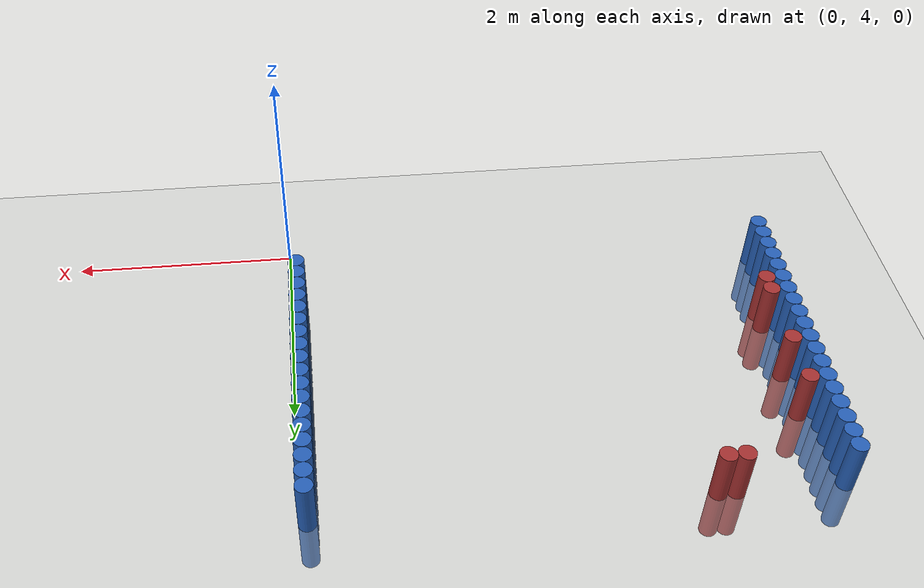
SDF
<sdf version="1.6">
 <world name="default">
  <model name="ground_plane">
   <static>1</static>
   <link name="link">
    <collision name="collision">
     <geometry><plane><normal>0 0 1</normal><size>100 100</size></plane></geometry>
     <surface><friction><ode><mu>100</mu><mu2>50</mu2></ode></friction></surface>
    </collision>
    <visual name="visual">
     <cast_shadows>0</cast_shadows>
     <geometry><plane><normal>0 0 1</normal><size>100 100</size></plane></geometry>
     <material>
      <script><uri>file://media/materials/scripts/gazebo.material</uri><name>Gazebo/Grey</name></script>
     </material>
    </visual>
   </link>
  </model>
  <model name="unit_cylinder_87">
   <static>1</static>
   <pose>-4.425000 4.425000 0.000000 0.000000 0.000000 0.000000</pose>
   <link name="link">
    <inertial>
     <mass>1</mass>
     <inertia><ixx>0.145833</ixx><ixy>0</ixy><ixz>0</ixz><iyy>0.145833</iyy><iyz>0</iyz><izz>0.125</izz></inertia>
    </inertial>
    <collision name="collision">
     <geometry><cylinder><radius>0.075000</radius><length>1</length></cylinder></geometry>
    </collision>
    <visual name="visual">
     <geometry><cylinder><radius>0.075000</radius><length>1</length></cylinder></geometry>
     <material>
      <ambient>0.152000 0.379000 0.720000 1</ambient>
      <diffuse>0.152000 0.379000 0.720000 1</diffuse>
     </material>
     <material>
      <script><name>Gazebo/Grey</name><uri>file://media/materials/scripts/gazebo.material</uri></script>
     </material>
    </visual>
   </link>
  </model>
  <model name="unit_cylinder_88">
   <static>1</static>
   <pose>-0.075000 4.575000 0.000000 0.000000 0.000000 0.000000</pose>
   <link name="link">
    <inertial>
     <mass>1</mass>
     <inertia><ixx>0.145833</ixx><ixy>0</ixy><ixz>0</ixz><iyy>0.145833</iyy><iyz>0</iyz><izz>0.125</izz></inertia>
    </inertial>
    <collision name="collision">
     <geometry><cylinder><radius>0.075000</radius><length>1</length></cylinder></geometry>
    </collision>
    <visual name="visual">
     <geometry><cylinder><radius>0.075000</radius><length>1</length></cylinder></geometry>
     <material>
      <ambient>0.152000 0.379000 0.720000 1</ambient>
      <diffuse>0.152000 0.379000 0.720000 1</diffuse>
     </material>
     <material>
      <script><name>Gazebo/Grey</name><uri>file://media/materials/scripts/gazebo.material</uri></script>
     </material>
    </visual>
   </link>
  </model>
  <model name="unit_cylinder_89">
   <static>1</static>
   <pose>-4.425000 4.575000 0.000000 0.000000 0.000000 0.000000</pose>
   <link name="link">
    <inertial>
     <mass>1</mass>
     <inertia><ixx>0.145833</ixx><ixy>0</ixy><ixz>0</ixz><iyy>0.145833</iyy><iyz>0</iyz><izz>0.125</izz></inertia>
    </inertial>
    <collision name="collision">
     <geometry><cylinder><radius>0.075000</radius><length>1</length></cylinder></geometry>
    </collision>
    <visual name="visual">
     <geometry><cylinder><radius>0.075000</radius><length>1</length></cylinder></geometry>
     <material>
      <ambient>0.152000 0.379000 0.720000 1</ambient>
      <diffuse>0.152000 0.379000 0.720000 1</diffuse>
     </material>
     <material>
      <script><name>Gazebo/Grey</name><uri>file://media/materials/scripts/gazebo.material</uri></script>
     </material>
    </visual>
   </link>
  </model>
  <model name="unit_cylinder_90">
   <static>1</static>
   <pose>-0.075000 4.725000 0.000000 0.000000 0.000000 0.000000</pose>
   <link name="link">
    <inertial>
     <mass>1</mass>
     <inertia><ixx>0.145833</ixx><ixy>0</ixy><ixz>0</ixz><iyy>0.145833</iyy><iyz>0</iyz><izz>0.125</izz></inertia>
    </inertial>
    <collision name="collision">
     <geometry><cylinder><radius>0.075000</radius><length>1</length></cylinder></geometry>
    </collision>
    <visual name="visual">
     <geometry><cylinder><radius>0.075000</radius><length>1</length></cylinder></geometry>
     <material>
      <ambient>0.152000 0.379000 0.720000 1</ambient>
      <diffuse>0.152000 0.379000 0.720000 1</diffuse>
     </material>
     <material>
      <script><name>Gazebo/Grey</name><uri>file://media/materials/scripts/gazebo.material</uri></script>
     </material>
    </visual>
   </link>
  </model>
  <model name="unit_cylinder_91">
   <static>1</static>
   <pose>-4.425000 4.725000 0.000000 0.000000 0.000000 0.000000</pose>
   <link name="link">
    <inertial>
     <mass>1</mass>
     <inertia><ixx>0.145833</ixx><ixy>0</ixy><ixz>0</ixz><iyy>0.145833</iyy><iyz>0</iyz><izz>0.125</izz></inertia>
    </inertial>
    <collision name="collision">
     <geometry><cylinder><radius>0.075000</radius><length>1</length></cylinder></geometry>
    </collision>
    <visual name="visual">
     <geometry><cylinder><radius>0.075000</radius><length>1</length></cylinder></geometry>
     <material>
      <ambient>0.152000 0.379000 0.720000 1</ambient>
      <diffuse>0.152000 0.379000 0.720000 1</diffuse>
     </material>
     <material>
      <script><name>Gazebo/Grey</name><uri>file://media/materials/scripts/gazebo.material</uri></script>
     </material>
    </visual>
   </link>
  </model>
  <model name="unit_cylinder_92">
   <static>1</static>
   <pose>-0.075000 4.875000 0.000000 0.000000 0.000000 0.000000</pose>
   <link name="link">
    <inertial>
     <mass>1</mass>
     <inertia><ixx>0.145833</ixx><ixy>0</ixy><ixz>0</ixz><iyy>0.145833</iyy><iyz>0</iyz><izz>0.125</izz></inertia>
    </inertial>
    <collision name="collision">
     <geometry><cylinder><radius>0.075000</radius><length>1</length></cylinder></geometry>
    </collision>
    <visual name="visual">
     <geometry><cylinder><radius>0.075000</radius><length>1</length></cylinder></geometry>
     <material>
      <ambient>0.152000 0.379000 0.720000 1</ambient>
      <diffuse>0.152000 0.379000 0.720000 1</diffuse>
     </material>
     <material>
      <script><name>Gazebo/Grey</name><uri>file://media/materials/scripts/gazebo.material</uri></script>
     </material>
    </visual>
   </link>
  </model>
  <model name="unit_cylinder_93">
   <static>1</static>
   <pose>-4.425000 4.875000 0.000000 0.000000 0.000000 0.000000</pose>
   <link name="link">
    <inertial>
     <mass>1</mass>
     <inertia><ixx>0.145833</ixx><ixy>0</ixy><ixz>0</ixz><iyy>0.145833</iyy><iyz>0</iyz><izz>0.125</izz></inertia>
    </inertial>
    <collision name="collision">
     <geometry><cylinder><radius>0.075000</radius><length>1</length></cylinder></geometry>
    </collision>
    <visual name="visual">
     <geometry><cylinder><radius>0.075000</radius><length>1</length></cylinder></geometry>
     <material>
      <ambient>0.152000 0.379000 0.720000 1</ambient>
      <diffuse>0.152000 0.379000 0.720000 1</diffuse>
     </material>
     <material>
      <script><name>Gazebo/Grey</name><uri>file://media/materials/scripts/gazebo.material</uri></script>
     </material>
    </visual>
   </link>
  </model>
  <model name="unit_cylinder_94">
   <static>1</static>
   <pose>-0.075000 5.025000 0.000000 0.000000 0.000000 0.000000</pose>
   <link name="link">
    <inertial>
     <mass>1</mass>
     <inertia><ixx>0.145833</ixx><ixy>0</ixy><ixz>0</ixz><iyy>0.145833</iyy><iyz>0</iyz><izz>0.125</izz></inertia>
    </inertial>
    <collision name="collision">
     <geometry><cylinder><radius>0.075000</radius><length>1</length></cylinder></geometry>
    </collision>
    <visual name="visual">
     <geometry><cylinder><radius>0.075000</radius><length>1</length></cylinder></geometry>
     <material>
      <ambient>0.152000 0.379000 0.720000 1</ambient>
      <diffuse>0.152000 0.379000 0.720000 1</diffuse>
     </material>
     <material>
      <script><name>Gazebo/Grey</name><uri>file://media/materials/scripts/gazebo.material</uri></script>
     </material>
    </visual>
   </link>
  </model>
  <model name="unit_cylinder_95">
   <static>1</static>
   <pose>-4.425000 5.025000 0.000000 0.000000 0.000000 0.000000</pose>
   <link name="link">
    <inertial>
     <mass>1</mass>
     <inertia><ixx>0.145833</ixx><ixy>0</ixy><ixz>0</ixz><iyy>0.145833</iyy><iyz>0</iyz><izz>0.125</izz></inertia>
    </inertial>
    <collision name="collision">
     <geometry><cylinder><radius>0.075000</radius><length>1</length></cylinder></geometry>
    </collision>
    <visual name="visual">
     <geometry><cylinder><radius>0.075000</radius><length>1</length></cylinder></geometry>
     <material>
      <ambient>0.152000 0.379000 0.720000 1</ambient>
      <diffuse>0.152000 0.379000 0.720000 1</diffuse>
     </material>
     <material>
      <script><name>Gazebo/Grey</name><uri>file://media/materials/scripts/gazebo.material</uri></script>
     </material>
    </visual>
   </link>
  </model>
  <model name="unit_cylinder_96">
   <static>1</static>
   <pose>-4.425000 5.175000 0.000000 0.000000 0.000000 0.000000</pose>
   <link name="link">
    <inertial>
     <mass>1</mass>
     <inertia><ixx>0.145833</ixx><ixy>0</ixy><ixz>0</ixz><iyy>0.145833</iyy><iyz>0</iyz><izz>0.125</izz></inertia>
    </inertial>
    <collision name="collision">
     <geometry><cylinder><radius>0.075000</radius><length>1</length></cylinder></geometry>
    </collision>
    <visual name="visual">
     <geometry><cylinder><radius>0.075000</radius><length>1</length></cylinder></geometry>
     <material>
      <ambient>0.152000 0.379000 0.720000 1</ambient>
      <diffuse>0.152000 0.379000 0.720000 1</diffuse>
     </material>
     <material>
      <script><name>Gazebo/Grey</name><uri>file://media/materials/scripts/gazebo.material</uri></script>
     </material>
    </visual>
   </link>
  </model>
  <model name="unit_cylinder_97">
   <static>1</static>
   <pose>-4.425000 5.325000 0.000000 0.000000 0.000000 0.000000</pose>
   <link name="link">
    <inertial>
     <mass>1</mass>
     <inertia><ixx>0.145833</ixx><ixy>0</ixy><ixz>0</ixz><iyy>0.145833</iyy><iyz>0</iyz><izz>0.125</izz></inertia>
    </inertial>
    <collision name="collision">
     <geometry><cylinder><radius>0.075000</radius><length>1</length></cylinder></geometry>
    </collision>
    <visual name="visual">
     <geometry><cylinder><radius>0.075000</radius><length>1</length></cylinder></geometry>
     <material>
      <ambient>0.152000 0.379000 0.720000 1</ambient>
      <diffuse>0.152000 0.379000 0.720000 1</diffuse>
     </material>
     <material>
      <script><name>Gazebo/Grey</name><uri>file://media/materials/scripts/gazebo.material</uri></script>
     </material>
    </visual>
   </link>
  </model>
  <model name="unit_cylinder_98">
   <static>1</static>
   <pose>-4.425000 5.475000 0.000000 0.000000 0.000000 0.000000</pose>
   <link name="link">
    <inertial>
     <mass>1</mass>
     <inertia><ixx>0.145833</ixx><ixy>0</ixy><ixz>0</ixz><iyy>0.145833</iyy><iyz>0</iyz><izz>0.125</izz></inertia>
    </inertial>
    <collision name="collision">
     <geometry><cylinder><radius>0.075000</radius><length>1</length></cylinder></geometry>
    </collision>
    <visual name="visual">
     <geometry><cylinder><radius>0.075000</radius><length>1</length></cylinder></geometry>
     <material>
      <ambient>0.152000 0.379000 0.720000 1</ambient>
      <diffuse>0.152000 0.379000 0.720000 1</diffuse>
     </material>
     <material>
      <script><name>Gazebo/Grey</name><uri>file://media/materials/scripts/gazebo.material</uri></script>
     </material>
    </visual>
   </link>
  </model>
  <model name="unit_cylinder_99">
   <static>1</static>
   <pose>-4.425000 5.625000 0.000000 0.000000 0.000000 0.000000</pose>
   <link name="link">
    <inertial>
     <mass>1</mass>
     <inertia><ixx>0.145833</ixx><ixy>0</ixy><ixz>0</ixz><iyy>0.145833</iyy><iyz>0</iyz><izz>0.125</izz></inertia>
    </inertial>
    <collision name="collision">
     <geometry><cylinder><radius>0.075000</radius><length>1</length></cylinder></geometry>
    </collision>
    <visual name="visual">
     <geometry><cylinder><radius>0.075000</radius><length>1</length></cylinder></geometry>
     <material>
      <ambient>0.152000 0.379000 0.720000 1</ambient>
      <diffuse>0.152000 0.379000 0.720000 1</diffuse>
     </material>
     <material>
      <script><name>Gazebo/Grey</name><uri>file://media/materials/scripts/gazebo.material</uri></script>
     </material>
    </visual>
   </link>
  </model>
  <model name="unit_cylinder_100">
   <static>1</static>
   <pose>-4.425000 5.775000 0.000000 0.000000 0.000000 0.000000</pose>
   <link name="link">
    <inertial>
     <mass>1</mass>
     <inertia><ixx>0.145833</ixx><ixy>0</ixy><ixz>0</ixz><iyy>0.145833</iyy><iyz>0</iyz><izz>0.125</izz></inertia>
    </inertial>
    <collision name="collision">
     <geometry><cylinder><radius>0.075000</radius><length>1</length></cylinder></geometry>
    </collision>
    <visual name="visual">
     <geometry><cylinder><radius>0.075000</radius><length>1</length></cylinder></geometry>
     <material>
      <ambient>0.152000 0.379000 0.720000 1</ambient>
      <diffuse>0.152000 0.379000 0.720000 1</diffuse>
     </material>
     <material>
      <script><name>Gazebo/Grey</name><uri>file://media/materials/scripts/gazebo.material</uri></script>
     </material>
    </visual>
   </link>
  </model>
  <model name="unit_cylinder_101">
   <static>1</static>
   <pose>-4.425000 5.925000 0.000000 0.000000 0.000000 0.000000</pose>
   <link name="link">
    <inertial>
     <mass>1</mass>
     <inertia><ixx>0.145833</ixx><ixy>0</ixy><ixz>0</ixz><iyy>0.145833</iyy><iyz>0</iyz><izz>0.125</izz></inertia>
    </inertial>
    <collision name="collision">
     <geometry><cylinder><radius>0.075000</radius><length>1</length></cylinder></geometry>
    </collision>
    <visual name="visual">
     <geometry><cylinder><radius>0.075000</radius><length>1</length></cylinder></geometry>
     <material>
      <ambient>0.152000 0.379000 0.720000 1</ambient>
      <diffuse>0.152000 0.379000 0.720000 1</diffuse>
     </material>
     <material>
      <script><name>Gazebo/Grey</name><uri>file://media/materials/scripts/gazebo.material</uri></script>
     </material>
    </visual>
   </link>
  </model>
  <model name="unit_cylinder_102">
   <static>1</static>
   <pose>-4.425000 6.075000 0.000000 0.000000 0.000000 0.000000</pose>
   <link name="link">
    <inertial>
     <mass>1</mass>
     <inertia><ixx>0.145833</ixx><ixy>0</ixy><ixz>0</ixz><iyy>0.145833</iyy><iyz>0</iyz><izz>0.125</izz></inertia>
    </inertial>
    <collision name="collision">
     <geometry><cylinder><radius>0.075000</radius><length>1</length></cylinder></geometry>
    </collision>
    <visual name="visual">
     <geometry><cylinder><radius>0.075000</radius><length>1</length></cylinder></geometry>
     <material>
      <ambient>0.152000 0.379000 0.720000 1</ambient>
      <diffuse>0.152000 0.379000 0.720000 1</diffuse>
     </material>
     <material>
      <script><name>Gazebo/Grey</name><uri>file://media/materials/scripts/gazebo.material</uri></script>
     </material>
    </visual>
   </link>
  </model>
  <model name="unit_cylinder_103">
   <static>1</static>
   <pose>-4.425000 6.225000 0.000000 0.000000 0.000000 0.000000</pose>
   <link name="link">
    <inertial>
     <mass>1</mass>
     <inertia><ixx>0.145833</ixx><ixy>0</ixy><ixz>0</ixz><iyy>0.145833</iyy><iyz>0</iyz><izz>0.125</izz></inertia>
    </inertial>
    <collision name="collision">
     <geometry><cylinder><radius>0.075000</radius><length>1</length></cylinder></geometry>
    </collision>
    <visual name="visual">
     <geometry><cylinder><radius>0.075000</radius><length>1</length></cylinder></geometry>
     <material>
      <ambient>0.152000 0.379000 0.720000 1</ambient>
      <diffuse>0.152000 0.379000 0.720000 1</diffuse>
     </material>
     <material>
      <script><name>Gazebo/Grey</name><uri>file://media/materials/scripts/gazebo.material</uri></script>
     </material>
    </visual>
   </link>
  </model>
  <model name="unit_cylinder_104">
   <static>1</static>
   <pose>-4.425000 6.375000 0.000000 0.000000 0.000000 0.000000</pose>
   <link name="link">
    <inertial>
     <mass>1</mass>
     <inertia><ixx>0.145833</ixx><ixy>0</ixy><ixz>0</ixz><iyy>0.145833</iyy><iyz>0</iyz><izz>0.125</izz></inertia>
    </inertial>
    <collision name="collision">
     <geometry><cylinder><radius>0.075000</radius><length>1</length></cylinder></geometry>
    </collision>
    <visual name="visual">
     <geometry><cylinder><radius>0.075000</radius><length>1</length></cylinder></geometry>
     <material>
      <ambient>0.152000 0.379000 0.720000 1</ambient>
      <diffuse>0.152000 0.379000 0.720000 1</diffuse>
     </material>
     <material>
      <script><name>Gazebo/Grey</name><uri>file://media/materials/scripts/gazebo.material</uri></script>
     </material>
    </visual>
   </link>
  </model>
  <model name="unit_cylinder_105">
   <static>1</static>
   <pose>-4.425000 6.525000 0.000000 0.000000 0.000000 0.000000</pose>
   <link name="link">
    <inertial>
     <mass>1</mass>
     <inertia><ixx>0.145833</ixx><ixy>0</ixy><ixz>0</ixz><iyy>0.145833</iyy><iyz>0</iyz><izz>0.125</izz></inertia>
    </inertial>
    <collision name="collision">
     <geometry><cylinder><radius>0.075000</radius><length>1</length></cylinder></geometry>
    </collision>
    <visual name="visual">
     <geometry><cylinder><radius>0.075000</radius><length>1</length></cylinder></geometry>
     <material>
      <ambient>0.152000 0.379000 0.720000 1</ambient>
      <diffuse>0.152000 0.379000 0.720000 1</diffuse>
     </material>
     <material>
      <script><name>Gazebo/Grey</name><uri>file://media/materials/scripts/gazebo.material</uri></script>
     </material>
    </visual>
   </link>
  </model>
  <model name="unit_cylinder_106">
   <static>1</static>
   <pose>-4.425000 6.675000 0.000000 0.000000 0.000000 0.000000</pose>
   <link name="link">
    <inertial>
     <mass>1</mass>
     <inertia><ixx>0.145833</ixx><ixy>0</ixy><ixz>0</ixz><iyy>0.145833</iyy><iyz>0</iyz><izz>0.125</izz></inertia>
    </inertial>
    <collision name="collision">
     <geometry><cylinder><radius>0.075000</radius><length>1</length></cylinder></geometry>
    </collision>
    <visual name="visual">
     <geometry><cylinder><radius>0.075000</radius><length>1</length></cylinder></geometry>
     <material>
      <ambient>0.152000 0.379000 0.720000 1</ambient>
      <diffuse>0.152000 0.379000 0.720000 1</diffuse>
     </material>
     <material>
      <script><name>Gazebo/Grey</name><uri>file://media/materials/scripts/gazebo.material</uri></script>
     </material>
    </visual>
   </link>
  </model>
  <model name="unit_cylinder_107">
   <static>1</static>
   <pose>-4.425000 6.825000 0.000000 0.000000 0.000000 0.000000</pose>
   <link name="link">
    <inertial>
     <mass>1</mass>
     <inertia><ixx>0.145833</ixx><ixy>0</ixy><ixz>0</ixz><iyy>0.145833</iyy><iyz>0</iyz><izz>0.125</izz></inertia>
    </inertial>
    <collision name="collision">
     <geometry><cylinder><radius>0.075000</radius><length>1</length></cylinder></geometry>
    </collision>
    <visual name="visual">
     <geometry><cylinder><radius>0.075000</radius><length>1</length></cylinder></geometry>
     <material>
      <ambient>0.152000 0.379000 0.720000 1</ambient>
      <diffuse>0.152000 0.379000 0.720000 1</diffuse>
     </material>
     <material>
      <script><name>Gazebo/Grey</name><uri>file://media/materials/scripts/gazebo.material</uri></script>
     </material>
    </visual>
   </link>
  </model>
  <model name="unit_cylinder_108">
   <static>1</static>
   <pose>-4.425000 6.975000 0.000000 0.000000 0.000000 0.000000</pose>
   <link name="link">
    <inertial>
     <mass>1</mass>
     <inertia><ixx>0.145833</ixx><ixy>0</ixy><ixz>0</ixz><iyy>0.145833</iyy><iyz>0</iyz><izz>0.125</izz></inertia>
    </inertial>
    <collision name="collision">
     <geometry><cylinder><radius>0.075000</radius><length>1</length></cylinder></geometry>
    </collision>
    <visual name="visual">
     <geometry><cylinder><radius>0.075000</radius><length>1</length></cylinder></geometry>
     <material>
      <ambient>0.152000 0.379000 0.720000 1</ambient>
      <diffuse>0.152000 0.379000 0.720000 1</diffuse>
     </material>
     <material>
      <script><name>Gazebo/Grey</name><uri>file://media/materials/scripts/gazebo.material</uri></script>
     </material>
    </visual>
   </link>
  </model>
  <model name="unit_cylinder_109">
   <static>1</static>
   <pose>-4.425000 7.125000 0.000000 0.000000 0.000000 0.000000</pose>
   <link name="link">
    <inertial>
     <mass>1</mass>
     <inertia><ixx>0.145833</ixx><ixy>0</ixy><ixz>0</ixz><iyy>0.145833</iyy><iyz>0</iyz><izz>0.125</izz></inertia>
    </inertial>
    <collision name="collision">
     <geometry><cylinder><radius>0.075000</radius><length>1</length></cylinder></geometry>
    </collision>
    <visual name="visual">
     <geometry><cylinder><radius>0.075000</radius><length>1</length></cylinder></geometry>
     <material>
      <ambient>0.152000 0.379000 0.720000 1</ambient>
      <diffuse>0.152000 0.379000 0.720000 1</diffuse>
     </material>
     <material>
      <script><name>Gazebo/Grey</name><uri>file://media/materials/scripts/gazebo.material</uri></script>
     </material>
    </visual>
   </link>
  </model>
  <model name="unit_cylinder_126">
   <static>1</static>
   <pose>-4.275000 5.175000 0.000000 0.000000 0.000000 0.000000</pose>
   <link name="link">
    <inertial>
     <mass>1</mass>
     <inertia><ixx>0.145833</ixx><ixy>0</ixy><ixz>0</ixz><iyy>0.145833</iyy><iyz>0</iyz><izz>0.125</izz></inertia>
    </inertial>
    <collision name="collision">
     <geometry><cylinder><radius>0.075000</radius><length>1</length></cylinder></geometry>
    </collision>
    <visual name="visual">
     <geometry><cylinder><radius>0.075000</radius><length>1</length></cylinder></geometry>
     <material>
      <ambient>0.648000 0.192000 0.192000 1</ambient>
      <diffuse>0.648000 0.192000 0.192000 1</diffuse>
     </material>
     <material>
      <script><name>Gazebo/Grey</name><uri>file://media/materials/scripts/gazebo.material</uri></script>
     </material>
    </visual>
   </link>
  </model>
  <model name="unit_cylinder_127">
   <static>1</static>
   <pose>-4.275000 5.325000 0.000000 0.000000 0.000000 0.000000</pose>
   <link name="link">
    <inertial>
     <mass>1</mass>
     <inertia><ixx>0.145833</ixx><ixy>0</ixy><ixz>0</ixz><iyy>0.145833</iyy><iyz>0</iyz><izz>0.125</izz></inertia>
    </inertial>
    <collision name="collision">
     <geometry><cylinder><radius>0.075000</radius><length>1</length></cylinder></geometry>
    </collision>
    <visual name="visual">
     <geometry><cylinder><radius>0.075000</radius><length>1</length></cylinder></geometry>
     <material>
      <ambient>0.648000 0.192000 0.192000 1</ambient>
      <diffuse>0.648000 0.192000 0.192000 1</diffuse>
     </material>
     <material>
      <script><name>Gazebo/Grey</name><uri>file://media/materials/scripts/gazebo.material</uri></script>
     </material>
    </visual>
   </link>
  </model>
  <model name="unit_cylinder_128">
   <static>1</static>
   <pose>-4.275000 5.925000 0.000000 0.000000 0.000000 0.000000</pose>
   <link name="link">
    <inertial>
     <mass>1</mass>
     <inertia><ixx>0.145833</ixx><ixy>0</ixy><ixz>0</ixz><iyy>0.145833</iyy><iyz>0</iyz><izz>0.125</izz></inertia>
    </inertial>
    <collision name="collision">
     <geometry><cylinder><radius>0.075000</radius><length>1</length></cylinder></geometry>
    </collision>
    <visual name="visual">
     <geometry><cylinder><radius>0.075000</radius><length>1</length></cylinder></geometry>
     <material>
      <ambient>0.648000 0.192000 0.192000 1</ambient>
      <diffuse>0.648000 0.192000 0.192000 1</diffuse>
     </material>
     <material>
      <script><name>Gazebo/Grey</name><uri>file://media/materials/scripts/gazebo.material</uri></script>
     </material>
    </visual>
   </link>
  </model>
  <model name="unit_cylinder_129">
   <static>1</static>
   <pose>-4.275000 6.375000 0.000000 0.000000 0.000000 0.000000</pose>
   <link name="link">
    <inertial>
     <mass>1</mass>
     <inertia><ixx>0.145833</ixx><ixy>0</ixy><ixz>0</ixz><iyy>0.145833</iyy><iyz>0</iyz><izz>0.125</izz></inertia>
    </inertial>
    <collision name="collision">
     <geometry><cylinder><radius>0.075000</radius><length>1</length></cylinder></geometry>
    </collision>
    <visual name="visual">
     <geometry><cylinder><radius>0.075000</radius><length>1</length></cylinder></geometry>
     <material>
      <ambient>0.648000 0.192000 0.192000 1</ambient>
      <diffuse>0.648000 0.192000 0.192000 1</diffuse>
     </material>
     <material>
      <script><name>Gazebo/Grey</name><uri>file://media/materials/scripts/gazebo.material</uri></script>
     </material>
    </visual>
   </link>
  </model>
  <model name="unit_cylinder_132">
   <static>1</static>
   <pose>-3.525000 7.125000 0.000000 0.000000 0.000000 0.000000</pose>
   <link name="link">
    <inertial>
     <mass>1</mass>
     <inertia><ixx>0.145833</ixx><ixy>0</ixy><ixz>0</ixz><iyy>0.145833</iyy><iyz>0</iyz><izz>0.125</izz></inertia>
    </inertial>
    <collision name="collision">
     <geometry><cylinder><radius>0.075000</radius><length>1</length></cylinder></geometry>
    </collision>
    <visual name="visual">
     <geometry><cylinder><radius>0.075000</radius><length>1</length></cylinder></geometry>
     <material>
      <ambient>0.648000 0.192000 0.192000 1</ambient>
      <diffuse>0.648000 0.192000 0.192000 1</diffuse>
     </material>
     <material>
      <script><name>Gazebo/Grey</name><uri>file://media/materials/scripts/gazebo.material</uri></script>
     </material>
    </visual>
   </link>
  </model>
  <model name="unit_cylinder_134">
   <static>1</static>
   <pose>-3.375000 7.125000 0.000000 0.000000 0.000000 0.000000</pose>
   <link name="link">
    <inertial>
     <mass>1</mass>
     <inertia><ixx>0.145833</ixx><ixy>0</ixy><ixz>0</ixz><iyy>0.145833</iyy><iyz>0</iyz><izz>0.125</izz></inertia>
    </inertial>
    <collision name="collision">
     <geometry><cylinder><radius>0.075000</radius><length>1</length></cylinder></geometry>
    </collision>
    <visual name="visual">
     <geometry><cylinder><radius>0.075000</radius><length>1</length></cylinder></geometry>
     <material>
      <ambient>0.648000 0.192000 0.192000 1</ambient>
      <diffuse>0.648000 0.192000 0.192000 1</diffuse>
     </material>
     <material>
      <script><name>Gazebo/Grey</name><uri>file://media/materials/scripts/gazebo.material</uri></script>
     </material>
    </visual>
   </link>
  </model>
  <model name="unit_cylinder_143">
   <static>1</static>
   <pose>-0.075000 5.175000 0.000000 0.000000 0.000000 0.000000</pose>
   <link name="link">
    <inertial>
     <mass>1</mass>
     <inertia><ixx>0.145833</ixx><ixy>0</ixy><ixz>0</ixz><iyy>0.145833</iyy><iyz>0</iyz><izz>0.125</izz></inertia>
    </inertial>
    <collision name="collision">
     <geometry><cylinder><radius>0.075000</radius><length>1</length></cylinder></geometry>
    </collision>
    <visual name="visual">
     <geometry><cylinder><radius>0.075000</radius><length>1</length></cylinder></geometry>
     <material>
      <ambient>0.152000 0.379000 0.720000 1</ambient>
      <diffuse>0.152000 0.379000 0.720000 1</diffuse>
     </material>
     <material>
      <script><name>Gazebo/Grey</name><uri>file://media/materials/scripts/gazebo.material</uri></script>
     </material>
    </visual>
   </link>
  </model>
  <model name="unit_cylinder_144">
   <static>1</static>
   <pose>-0.075000 5.325000 0.000000 0.000000 0.000000 0.000000</pose>
   <link name="link">
    <inertial>
     <mass>1</mass>
     <inertia><ixx>0.145833</ixx><ixy>0</ixy><ixz>0</ixz><iyy>0.145833</iyy><iyz>0</iyz><izz>0.125</izz></inertia>
    </inertial>
    <collision name="collision">
     <geometry><cylinder><radius>0.075000</radius><length>1</length></cylinder></geometry>
    </collision>
    <visual name="visual">
     <geometry><cylinder><radius>0.075000</radius><length>1</length></cylinder></geometry>
     <material>
      <ambient>0.152000 0.379000 0.720000 1</ambient>
      <diffuse>0.152000 0.379000 0.720000 1</diffuse>
     </material>
     <material>
      <script><name>Gazebo/Grey</name><uri>file://media/materials/scripts/gazebo.material</uri></script>
     </material>
    </visual>
   </link>
  </model>
  <model name="unit_cylinder_145">
   <static>1</static>
   <pose>-0.075000 5.475000 0.000000 0.000000 0.000000 0.000000</pose>
   <link name="link">
    <inertial>
     <mass>1</mass>
     <inertia><ixx>0.145833</ixx><ixy>0</ixy><ixz>0</ixz><iyy>0.145833</iyy><iyz>0</iyz><izz>0.125</izz></inertia>
    </inertial>
    <collision name="collision">
     <geometry><cylinder><radius>0.075000</radius><length>1</length></cylinder></geometry>
    </collision>
    <visual name="visual">
     <geometry><cylinder><radius>0.075000</radius><length>1</length></cylinder></geometry>
     <material>
      <ambient>0.152000 0.379000 0.720000 1</ambient>
      <diffuse>0.152000 0.379000 0.720000 1</diffuse>
     </material>
     <material>
      <script><name>Gazebo/Grey</name><uri>file://media/materials/scripts/gazebo.material</uri></script>
     </material>
    </visual>
   </link>
  </model>
  <model name="unit_cylinder_146">
   <static>1</static>
   <pose>-0.075000 5.625000 0.000000 0.000000 0.000000 0.000000</pose>
   <link name="link">
    <inertial>
     <mass>1</mass>
     <inertia><ixx>0.145833</ixx><ixy>0</ixy><ixz>0</ixz><iyy>0.145833</iyy><iyz>0</iyz><izz>0.125</izz></inertia>
    </inertial>
    <collision name="collision">
     <geometry><cylinder><radius>0.075000</radius><length>1</length></cylinder></geometry>
    </collision>
    <visual name="visual">
     <geometry><cylinder><radius>0.075000</radius><length>1</length></cylinder></geometry>
     <material>
      <ambient>0.152000 0.379000 0.720000 1</ambient>
      <diffuse>0.152000 0.379000 0.720000 1</diffuse>
     </material>
     <material>
      <script><name>Gazebo/Grey</name><uri>file://media/materials/scripts/gazebo.material</uri></script>
     </material>
    </visual>
   </link>
  </model>
  <model name="unit_cylinder_147">
   <static>1</static>
   <pose>-0.075000 5.775000 0.000000 0.000000 0.000000 0.000000</pose>
   <link name="link">
    <inertial>
     <mass>1</mass>
     <inertia><ixx>0.145833</ixx><ixy>0</ixy><ixz>0</ixz><iyy>0.145833</iyy><iyz>0</iyz><izz>0.125</izz></inertia>
    </inertial>
    <collision name="collision">
     <geometry><cylinder><radius>0.075000</radius><length>1</length></cylinder></geometry>
    </collision>
    <visual name="visual">
     <geometry><cylinder><radius>0.075000</radius><length>1</length></cylinder></geometry>
     <material>
      <ambient>0.152000 0.379000 0.720000 1</ambient>
      <diffuse>0.152000 0.379000 0.720000 1</diffuse>
     </material>
     <material>
      <script><name>Gazebo/Grey</name><uri>file://media/materials/scripts/gazebo.material</uri></script>
     </material>
    </visual>
   </link>
  </model>
  <model name="unit_cylinder_148">
   <static>1</static>
   <pose>-0.075000 5.925000 0.000000 0.000000 0.000000 0.000000</pose>
   <link name="link">
    <inertial>
     <mass>1</mass>
     <inertia><ixx>0.145833</ixx><ixy>0</ixy><ixz>0</ixz><iyy>0.145833</iyy><iyz>0</iyz><izz>0.125</izz></inertia>
    </inertial>
    <collision name="collision">
     <geometry><cylinder><radius>0.075000</radius><length>1</length></cylinder></geometry>
    </collision>
    <visual name="visual">
     <geometry><cylinder><radius>0.075000</radius><length>1</length></cylinder></geometry>
     <material>
      <ambient>0.152000 0.379000 0.720000 1</ambient>
      <diffuse>0.152000 0.379000 0.720000 1</diffuse>
     </material>
     <material>
      <script><name>Gazebo/Grey</name><uri>file://media/materials/scripts/gazebo.material</uri></script>
     </material>
    </visual>
   </link>
  </model>
  <model name="unit_cylinder_149">
   <static>1</static>
   <pose>-0.075000 6.075000 0.000000 0.000000 0.000000 0.000000</pose>
   <link name="link">
    <inertial>
     <mass>1</mass>
     <inertia><ixx>0.145833</ixx><ixy>0</ixy><ixz>0</ixz><iyy>0.145833</iyy><iyz>0</iyz><izz>0.125</izz></inertia>
    </inertial>
    <collision name="collision">
     <geometry><cylinder><radius>0.075000</radius><length>1</length></cylinder></geometry>
    </collision>
    <visual name="visual">
     <geometry><cylinder><radius>0.075000</radius><length>1</length></cylinder></geometry>
     <material>
      <ambient>0.152000 0.379000 0.720000 1</ambient>
      <diffuse>0.152000 0.379000 0.720000 1</diffuse>
     </material>
     <material>
      <script><name>Gazebo/Grey</name><uri>file://media/materials/scripts/gazebo.material</uri></script>
     </material>
    </visual>
   </link>
  </model>
  <model name="unit_cylinder_150">
   <static>1</static>
   <pose>-0.075000 6.225000 0.000000 0.000000 0.000000 0.000000</pose>
   <link name="link">
    <inertial>
     <mass>1</mass>
     <inertia><ixx>0.145833</ixx><ixy>0</ixy><ixz>0</ixz><iyy>0.145833</iyy><iyz>0</iyz><izz>0.125</izz></inertia>
    </inertial>
    <collision name="collision">
     <geometry><cylinder><radius>0.075000</radius><length>1</length></cylinder></geometry>
    </collision>
    <visual name="visual">
     <geometry><cylinder><radius>0.075000</radius><length>1</length></cylinder></geometry>
     <material>
      <ambient>0.152000 0.379000 0.720000 1</ambient>
      <diffuse>0.152000 0.379000 0.720000 1</diffuse>
     </material>
     <material>
      <script><name>Gazebo/Grey</name><uri>file://media/materials/scripts/gazebo.material</uri></script>
     </material>
    </visual>
   </link>
  </model>
  <model name="unit_cylinder_151">
   <static>1</static>
   <pose>-0.075000 6.375000 0.000000 0.000000 0.000000 0.000000</pose>
   <link name="link">
    <inertial>
     <mass>1</mass>
     <inertia><ixx>0.145833</ixx><ixy>0</ixy><ixz>0</ixz><iyy>0.145833</iyy><iyz>0</iyz><izz>0.125</izz></inertia>
    </inertial>
    <collision name="collision">
     <geometry><cylinder><radius>0.075000</radius><length>1</length></cylinder></geometry>
    </collision>
    <visual name="visual">
     <geometry><cylinder><radius>0.075000</radius><length>1</length></cylinder></geometry>
     <material>
      <ambient>0.152000 0.379000 0.720000 1</ambient>
      <diffuse>0.152000 0.379000 0.720000 1</diffuse>
     </material>
     <material>
      <script><name>Gazebo/Grey</name><uri>file://media/materials/scripts/gazebo.material</uri></script>
     </material>
    </visual>
   </link>
  </model>
  <model name="unit_cylinder_152">
   <static>1</static>
   <pose>-0.075000 6.525000 0.000000 0.000000 0.000000 0.000000</pose>
   <link name="link">
    <inertial>
     <mass>1</mass>
     <inertia><ixx>0.145833</ixx><ixy>0</ixy><ixz>0</ixz><iyy>0.145833</iyy><iyz>0</iyz><izz>0.125</izz></inertia>
    </inertial>
    <collision name="collision">
     <geometry><cylinder><radius>0.075000</radius><length>1</length></cylinder></geometry>
    </collision>
    <visual name="visual">
     <geometry><cylinder><radius>0.075000</radius><length>1</length></cylinder></geometry>
     <material>
      <ambient>0.152000 0.379000 0.720000 1</ambient>
      <diffuse>0.152000 0.379000 0.720000 1</diffuse>
     </material>
     <material>
      <script><name>Gazebo/Grey</name><uri>file://media/materials/scripts/gazebo.material</uri></script>
     </material>
    </visual>
   </link>
  </model>
  <model name="unit_cylinder_153">
   <static>1</static>
   <pose>-0.075000 6.675000 0.000000 0.000000 0.000000 0.000000</pose>
   <link name="link">
    <inertial>
     <mass>1</mass>
     <inertia><ixx>0.145833</ixx><ixy>0</ixy><ixz>0</ixz><iyy>0.145833</iyy><iyz>0</iyz><izz>0.125</izz></inertia>
    </inertial>
    <collision name="collision">
     <geometry><cylinder><radius>0.075000</radius><length>1</length></cylinder></geometry>
    </collision>
    <visual name="visual">
     <geometry><cylinder><radius>0.075000</radius><length>1</length></cylinder></geometry>
     <material>
      <ambient>0.152000 0.379000 0.720000 1</ambient>
      <diffuse>0.152000 0.379000 0.720000 1</diffuse>
     </material>
     <material>
      <script><name>Gazebo/Grey</name><uri>file://media/materials/scripts/gazebo.material</uri></script>
     </material>
    </visual>
   </link>
  </model>
  <model name="unit_cylinder_154">
   <static>1</static>
   <pose>-0.075000 6.825000 0.000000 0.000000 0.000000 0.000000</pose>
   <link name="link">
    <inertial>
     <mass>1</mass>
     <inertia><ixx>0.145833</ixx><ixy>0</ixy><ixz>0</ixz><iyy>0.145833</iyy><iyz>0</iyz><izz>0.125</izz></inertia>
    </inertial>
    <collision name="collision">
     <geometry><cylinder><radius>0.075000</radius><length>1</length></cylinder></geometry>
    </collision>
    <visual name="visual">
     <geometry><cylinder><radius>0.075000</radius><length>1</length></cylinder></geometry>
     <material>
      <ambient>0.152000 0.379000 0.720000 1</ambient>
      <diffuse>0.152000 0.379000 0.720000 1</diffuse>
     </material>
     <material>
      <script><name>Gazebo/Grey</name><uri>file://media/materials/scripts/gazebo.material</uri></script>
     </material>
    </visual>
   </link>
  </model>
  <model name="unit_cylinder_155">
   <static>1</static>
   <pose>-0.075000 6.975000 0.000000 0.000000 0.000000 0.000000</pose>
   <link name="link">
    <inertial>
     <mass>1</mass>
     <inertia><ixx>0.145833</ixx><ixy>0</ixy><ixz>0</ixz><iyy>0.145833</iyy><iyz>0</iyz><izz>0.125</izz></inertia>
    </inertial>
    <collision name="collision">
     <geometry><cylinder><radius>0.075000</radius><length>1</length></cylinder></geometry>
    </collision>
    <visual name="visual">
     <geometry><cylinder><radius>0.075000</radius><length>1</length></cylinder></geometry>
     <material>
      <ambient>0.152000 0.379000 0.720000 1</ambient>
      <diffuse>0.152000 0.379000 0.720000 1</diffuse>
     </material>
     <material>
      <script><name>Gazebo/Grey</name><uri>file://media/materials/scripts/gazebo.material</uri></script>
     </material>
    </visual>
   </link>
  </model>
  <model name="unit_cylinder_156">
   <static>1</static>
   <pose>-0.075000 7.125000 0.000000 0.000000 0.000000 0.000000</pose>
   <link name="link">
    <inertial>
     <mass>1</mass>
     <inertia><ixx>0.145833</ixx><ixy>0</ixy><ixz>0</ixz><iyy>0.145833</iyy><iyz>0</iyz><izz>0.125</izz></inertia>
    </inertial>
    <collision name="collision">
     <geometry><cylinder><radius>0.075000</radius><length>1</length></cylinder></geometry>
    </collision>
    <visual name="visual">
     <geometry><cylinder><radius>0.075000</radius><length>1</length></cylinder></geometry>
     <material>
      <ambient>0.152000 0.379000 0.720000 1</ambient>
      <diffuse>0.152000 0.379000 0.720000 1</diffuse>
     </material>
     <material>
      <script><name>Gazebo/Grey</name><uri>file://media/materials/scripts/gazebo.material</uri></script>
     </material>
    </visual>
   </link>
  </model>
 </world>
</sdf>
